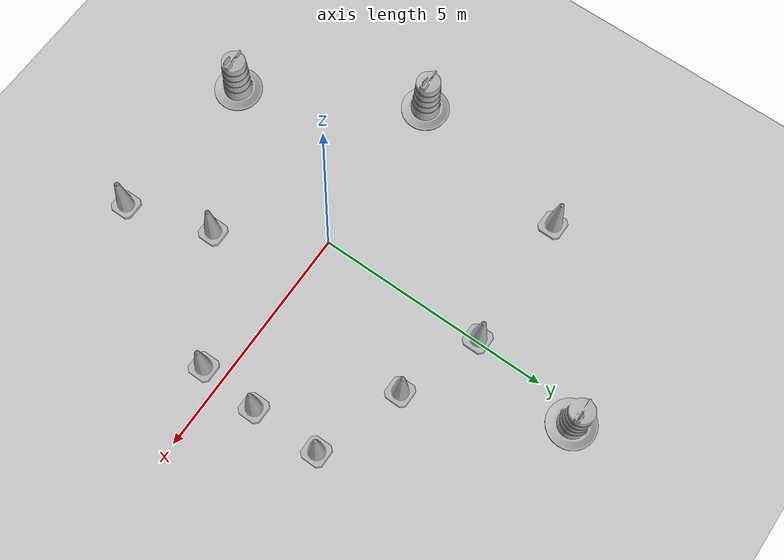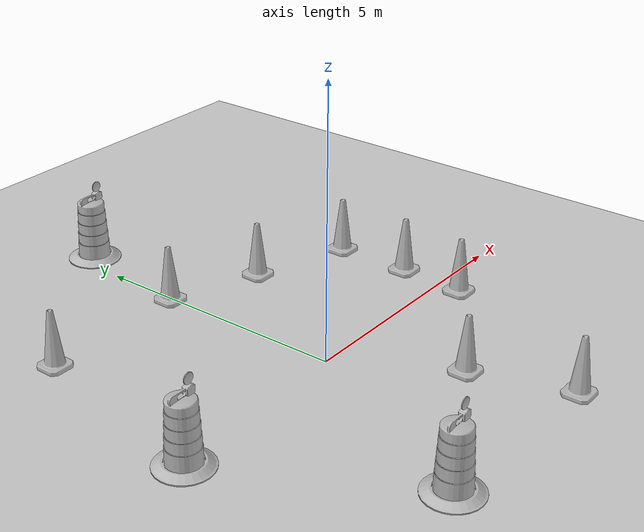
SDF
<sdf version="1.7">
 <world name="default">
  <light name="sun" type="directional">
   <pose>0 0 10 0 -0 0</pose>
   <diffuse>0.8 0.8 0.8 1</diffuse>
   <specular>0.2 0.2 0.2 1</specular>
   <attenuation>
    <range>1000</range>
    <constant>0.9</constant>
    <linear>0.01</linear>
    <quadratic>0.001</quadratic>
   </attenuation>
   <direction>-0.5 0.1 -0.9</direction>
   <spot><inner_angle>0</inner_angle><outer_angle>0</outer_angle><falloff>0</falloff></spot>
  </light>
  <model name="ground_plane">
   <static>1</static>
   <link name="link">
    <collision name="collision">
     <geometry><plane><normal>0 0 1</normal><size>100 100</size></plane></geometry>
     <surface><friction><ode><mu>100</mu><mu2>50</mu2></ode></friction></surface>
    </collision>
    <visual name="visual">
     <cast_shadows>0</cast_shadows>
     <geometry><plane><normal>0 0 1</normal><size>100 100</size></plane></geometry>
     <material>
      <script><uri>file://media/materials/scripts/gazebo.material</uri><name>Gazebo/Grey</name></script>
     </material>
    </visual>
   </link>
  </model>
  <gravity>0 0 -9.8</gravity>
  <magnetic_field>6e-06 2.3e-05 -4.2e-05</magnetic_field>
  <atmosphere type="adiabatic"/>
  <physics type="ode">
   <max_step_size>0.001</max_step_size>
   <real_time_factor>1</real_time_factor>
   <real_time_update_rate>1000</real_time_update_rate>
  </physics>
  <scene><ambient>0.4 0.4 0.4 1</ambient><background>0.7 0.7 0.7 1</background><shadows>1</shadows></scene>
  <spherical_coordinates>
   <surface_model>EARTH_WGS84</surface_model>
   <latitude_deg>0</latitude_deg>
   <longitude_deg>0</longitude_deg>
   <elevation>0</elevation>
   <heading_deg>0</heading_deg>
  </spherical_coordinates>
  <model name="Construction Cone">
   <link name="link">
    <collision name="collision">
     <geometry>
      <mesh><scale>10 10 10</scale><uri>model://construction_cone/meshes/construction_cone.dae</uri></mesh>
     </geometry>
    </collision>
    <visual name="visual">
     <geometry>
      <mesh><scale>10 10 10</scale><uri>model://construction_cone/meshes/construction_cone.dae</uri></mesh>
     </geometry>
    </visual>
    <inertial>
     <inertia><ixx>1</ixx><ixy>0</ixy><ixz>0</ixz><iyy>1</iyy><iyz>0</iyz><izz>1</izz></inertia>
     <mass>1</mass>
    </inertial>
   </link>
   <pose>1.18141 -2.02287 -9e-06 -3e-06 0 0</pose>
  </model>
  <model name="Construction Barrel">
   <link name="link">
    <inertial>
     <pose>0 0 0.4 0 -0 0</pose>
     <mass>500</mass>
     <inertia><ixx>51.2096</ixx><iyy>51.2096</iyy><izz>25</izz><ixy>0</ixy><ixz>0</ixz><iyz>0</iyz></inertia>
    </inertial>
    <collision name="collision">
     <geometry><mesh><uri>model://construction_barrel/meshes/construction_barrel.dae</uri></mesh></geometry>
    </collision>
    <visual name="visual">
     <geometry><mesh><uri>model://construction_barrel/meshes/construction_barrel.dae</uri></mesh></geometry>
    </visual>
   </link>
   <pose>-3.60545 -0.109999 0 0 0 -1.9e-05</pose>
  </model>
  <model name="Construction Cone_0">
   <link name="link">
    <collision name="collision">
     <geometry>
      <mesh><scale>10 10 10</scale><uri>model://construction_cone/meshes/construction_cone.dae</uri></mesh>
     </geometry>
    </collision>
    <visual name="visual">
     <geometry>
      <mesh><scale>10 10 10</scale><uri>model://construction_cone/meshes/construction_cone.dae</uri></mesh>
     </geometry>
    </visual>
    <inertial>
     <inertia><ixx>1</ixx><ixy>0</ixy><ixz>0</ixz><iyy>1</iyy><iyz>0</iyz><izz>1</izz></inertia>
     <mass>1</mass>
    </inertial>
   </link>
   <pose>1.74389 -3.82216 -0 0 -0 0</pose>
  </model>
  <model name="Construction Cone_0_clone">
   <link name="link">
    <collision name="collision">
     <geometry>
      <mesh><scale>10 10 10</scale><uri>model://construction_cone/meshes/construction_cone.dae</uri></mesh>
     </geometry>
    </collision>
    <visual name="visual">
     <geometry>
      <mesh><scale>10 10 10</scale><uri>model://construction_cone/meshes/construction_cone.dae</uri></mesh>
     </geometry>
    </visual>
    <inertial>
     <inertia><ixx>1</ixx><ixy>0</ixy><ixz>0</ixz><iyy>1</iyy><iyz>0</iyz><izz>1</izz></inertia>
     <mass>1</mass>
    </inertial>
   </link>
   <pose>3.49321 -0.45174 -0 0 -0 0</pose>
  </model>
  <model name="Construction Cone_0_clone_0">
   <link name="link">
    <collision name="collision">
     <geometry>
      <mesh><scale>10 10 10</scale><uri>model://construction_cone/meshes/construction_cone.dae</uri></mesh>
     </geometry>
    </collision>
    <visual name="visual">
     <geometry>
      <mesh><scale>10 10 10</scale><uri>model://construction_cone/meshes/construction_cone.dae</uri></mesh>
     </geometry>
    </visual>
    <inertial>
     <inertia><ixx>1</ixx><ixy>0</ixy><ixz>0</ixz><iyy>1</iyy><iyz>0</iyz><izz>1</izz></inertia>
     <mass>1</mass>
    </inertial>
   </link>
   <pose>-0.050719 3.54711 -3e-06 3e-06 1e-06 -0</pose>
  </model>
  <model name="Construction Barrel_clone">
   <link name="link">
    <inertial>
     <pose>0 0 0.4 0 -0 0</pose>
     <mass>500</mass>
     <inertia><ixx>51.2096</ixx><iyy>51.2096</iyy><izz>25</izz><ixy>0</ixy><ixz>0</ixz><iyz>0</iyz></inertia>
    </inertial>
    <collision name="collision">
     <geometry><mesh><uri>model://construction_barrel/meshes/construction_barrel.dae</uri></mesh></geometry>
    </collision>
    <visual name="visual">
     <geometry><mesh><uri>model://construction_barrel/meshes/construction_barrel.dae</uri></mesh></geometry>
    </visual>
   </link>
   <pose>-1.6929 -3.5862 -1e-06 3e-06 7e-06 -1.7e-05</pose>
  </model>
  <model name="Construction Cone_0_clone_clone">
   <link name="link">
    <collision name="collision">
     <geometry>
      <mesh><scale>10 10 10</scale><uri>model://construction_cone/meshes/construction_cone.dae</uri></mesh>
     </geometry>
    </collision>
    <visual name="visual">
     <geometry>
      <mesh><scale>10 10 10</scale><uri>model://construction_cone/meshes/construction_cone.dae</uri></mesh>
     </geometry>
    </visual>
    <inertial>
     <inertia><ixx>1</ixx><ixy>0</ixy><ixz>0</ixz><iyy>1</iyy><iyz>0</iyz><izz>1</izz></inertia>
     <mass>1</mass>
    </inertial>
   </link>
   <pose>1.69347 2.91342 -0 0 -0 0</pose>
  </model>
  <model name="Construction Cone_0_clone_clone_0">
   <link name="link">
    <collision name="collision">
     <geometry>
      <mesh><scale>10 10 10</scale><uri>model://construction_cone/meshes/construction_cone.dae</uri></mesh>
     </geometry>
    </collision>
    <visual name="visual">
     <geometry>
      <mesh><scale>10 10 10</scale><uri>model://construction_cone/meshes/construction_cone.dae</uri></mesh>
     </geometry>
    </visual>
    <inertial>
     <inertia><ixx>1</ixx><ixy>0</ixy><ixz>0</ixz><iyy>1</iyy><iyz>0</iyz><izz>1</izz></inertia>
     <mass>1</mass>
    </inertial>
   </link>
   <pose>3.57053 0.822711 -0 0 -1e-06 0</pose>
  </model>
  <model name="Construction Cone_0_clone_clone_1">
   <link name="link">
    <collision name="collision">
     <geometry>
      <mesh><scale>10 10 10</scale><uri>model://construction_cone/meshes/construction_cone.dae</uri></mesh>
     </geometry>
    </collision>
    <visual name="visual">
     <geometry>
      <mesh><scale>10 10 10</scale><uri>model://construction_cone/meshes/construction_cone.dae</uri></mesh>
     </geometry>
    </visual>
    <inertial>
     <inertia><ixx>1</ixx><ixy>0</ixy><ixz>0</ixz><iyy>1</iyy><iyz>0</iyz><izz>1</izz></inertia>
     <mass>1</mass>
    </inertial>
   </link>
   <pose>3.55123 2.28456 -0 0 -1e-06 0</pose>
  </model>
  <model name="Construction Cone_0_clone_clone_2">
   <link name="link">
    <collision name="collision">
     <geometry>
      <mesh><scale>10 10 10</scale><uri>model://construction_cone/meshes/construction_cone.dae</uri></mesh>
     </geometry>
    </collision>
    <visual name="visual">
     <geometry>
      <mesh><scale>10 10 10</scale><uri>model://construction_cone/meshes/construction_cone.dae</uri></mesh>
     </geometry>
    </visual>
    <inertial>
     <inertia><ixx>1</ixx><ixy>0</ixy><ixz>0</ixz><iyy>1</iyy><iyz>0</iyz><izz>1</izz></inertia>
     <mass>1</mass>
    </inertial>
   </link>
   <pose>-2.92138 3.47285 -0 -0 -0 -0</pose>
  </model>
  <model name="Construction Barrel_clone_0">
   <link name="link">
    <inertial>
     <pose>0 0 0.4 0 -0 0</pose>
     <mass>500</mass>
     <inertia><ixx>51.2096</ixx><iyy>51.2096</iyy><izz>25</izz><ixy>0</ixy><ixz>0</ixz><iyz>0</iyz></inertia>
    </inertial>
    <collision name="collision">
     <geometry><mesh><uri>model://construction_barrel/meshes/construction_barrel.dae</uri></mesh></geometry>
    </collision>
    <visual name="visual">
     <geometry><mesh><uri>model://construction_barrel/meshes/construction_barrel.dae</uri></mesh></geometry>
    </visual>
   </link>
   <pose>0.308762 5.91703 1e-06 4e-06 3e-06 -2e-05</pose>
  </model>
 </world>
</sdf>
